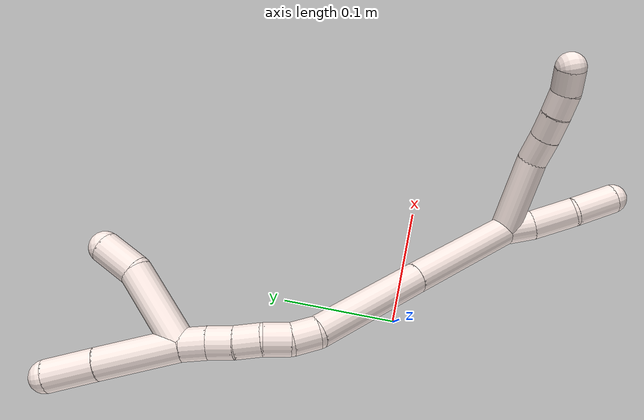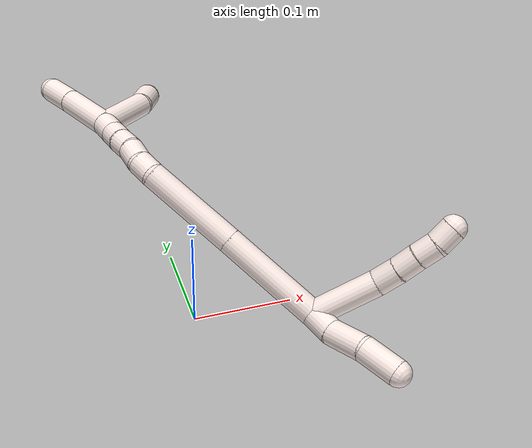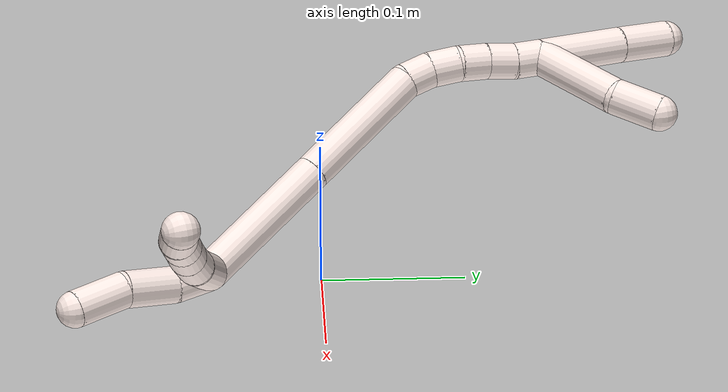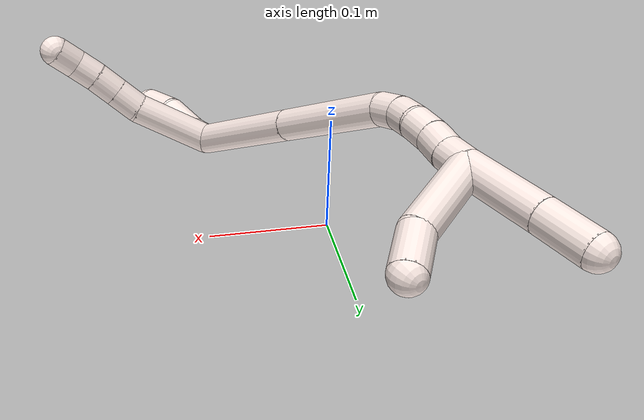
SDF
<sdf version="1.7">
 <world name="default">
  <model name="11">
   <static>0</static>
   <link name="11">
    <collision name="collision-cylinder-e_1_2_8">
     <pose>0.026614 -0.012447 -0.014301 2.42539 0.951822 1.88556</pose>
     <geometry><cylinder><radius>0.0125</radius><length>0.065353</length></cylinder></geometry>
     <surface>
      <friction><ode><mu>1.16</mu><mu2>1.16</mu2><slip1>0</slip1><slip2>0</slip2></ode></friction>
      <contact><ode><kp>1e+06</kp><kd>1</kd><max_vel>0</max_vel><min_depth>0.001</min_depth></ode></contact>
     </surface>
    </collision>
    <visual name="visual-cylinder-e_1_2_8">
     <pose>0.026614 -0.012447 -0.014301 2.42539 0.951822 1.88556</pose>
     <geometry><cylinder><radius>0.0125</radius><length>0.065353</length></cylinder></geometry>
     <material><ambient>1 0.933333 0.909804 1</ambient></material>
    </visual>
    <collision name="collision-cylinder-e_2_8_9">
     <pose>0.061202 -0.031412 -0.033921 2.25528 0.758583 1.39705</pose>
     <geometry><cylinder><radius>0.0125</radius><length>0.023184</length></cylinder></geometry>
     <surface>
      <friction><ode><mu>1.16</mu><mu2>1.16</mu2><slip1>0</slip1><slip2>0</slip2></ode></friction>
      <contact><ode><kp>1e+06</kp><kd>1</kd><max_vel>0</max_vel><min_depth>0.001</min_depth></ode></contact>
     </surface>
    </collision>
    <visual name="visual-cylinder-e_2_8_9">
     <pose>0.061202 -0.031412 -0.033921 2.25528 0.758583 1.39705</pose>
     <geometry><cylinder><radius>0.0125</radius><length>0.023184</length></cylinder></geometry>
     <material><ambient>1 0.933333 0.909804 1</ambient></material>
    </visual>
    <collision name="collision-cylinder-e_3_9_10">
     <pose>0.076729 -0.044136 -0.043453 2.16721 0.788894 1.33194</pose>
     <geometry><cylinder><radius>0.0125</radius><length>0.021288</length></cylinder></geometry>
     <surface>
      <friction><ode><mu>1.16</mu><mu2>1.16</mu2><slip1>0</slip1><slip2>0</slip2></ode></friction>
      <contact><ode><kp>1e+06</kp><kd>1</kd><max_vel>0</max_vel><min_depth>0.001</min_depth></ode></contact>
     </surface>
    </collision>
    <visual name="visual-cylinder-e_3_9_10">
     <pose>0.076729 -0.044136 -0.043453 2.16721 0.788894 1.33194</pose>
     <geometry><cylinder><radius>0.0125</radius><length>0.021288</length></cylinder></geometry>
     <material><ambient>1 0.933333 0.909804 1</ambient></material>
    </visual>
    <collision name="collision-cylinder-e_4_10_11">
     <pose>0.091801 -0.055633 -0.051655 2.21674 0.848387 1.47222</pose>
     <geometry><cylinder><radius>0.0125</radius><length>0.020046</length></cylinder></geometry>
     <surface>
      <friction><ode><mu>1.16</mu><mu2>1.16</mu2><slip1>0</slip1><slip2>0</slip2></ode></friction>
      <contact><ode><kp>1e+06</kp><kd>1</kd><max_vel>0</max_vel><min_depth>0.001</min_depth></ode></contact>
     </surface>
    </collision>
    <visual name="visual-cylinder-e_4_10_11">
     <pose>0.091801 -0.055633 -0.051655 2.21674 0.848387 1.47222</pose>
     <geometry><cylinder><radius>0.0125</radius><length>0.020046</length></cylinder></geometry>
     <material><ambient>1 0.933333 0.909804 1</ambient></material>
    </visual>
    <collision name="collision-cylinder-e_5_11_6">
     <pose>0.107353 -0.066735 -0.057384 1.86172 0.924056 1.17913</pose>
     <geometry><cylinder><radius>0.0125</radius><length>0.020129</length></cylinder></geometry>
     <surface>
      <friction><ode><mu>1.16</mu><mu2>1.16</mu2><slip1>0</slip1><slip2>0</slip2></ode></friction>
      <contact><ode><kp>1e+06</kp><kd>1</kd><max_vel>0</max_vel><min_depth>0.001</min_depth></ode></contact>
     </surface>
    </collision>
    <visual name="visual-cylinder-e_5_11_6">
     <pose>0.107353 -0.066735 -0.057384 1.86172 0.924056 1.17913</pose>
     <geometry><cylinder><radius>0.0125</radius><length>0.020129</length></cylinder></geometry>
     <material><ambient>1 0.933333 0.909804 1</ambient></material>
    </visual>
    <collision name="collision-cylinder-e_1_2_12">
     <pose>-0.000145 0.001946 -0.012674 -2.98925 -0.011287 0.147626</pose>
     <geometry><cylinder><radius>0.0125</radius><length>0.025646</length></cylinder></geometry>
     <surface>
      <friction><ode><mu>1.16</mu><mu2>1.16</mu2><slip1>0</slip1><slip2>0</slip2></ode></friction>
      <contact><ode><kp>1e+06</kp><kd>1</kd><max_vel>0</max_vel><min_depth>0.001</min_depth></ode></contact>
     </surface>
    </collision>
    <visual name="visual-cylinder-e_1_2_12">
     <pose>-0.000145 0.001946 -0.012674 -2.98925 -0.011287 0.147626</pose>
     <geometry><cylinder><radius>0.0125</radius><length>0.025646</length></cylinder></geometry>
     <material><ambient>1 0.933333 0.909804 1</ambient></material>
    </visual>
    <collision name="collision-cylinder-e_2_12_13">
     <pose>0.002059 0.001388 -0.043753 3.0064 0.12578 1.4985</pose>
     <geometry><cylinder><radius>0.0125</radius><length>0.037446</length></cylinder></geometry>
     <surface>
      <friction><ode><mu>1.16</mu><mu2>1.16</mu2><slip1>0</slip1><slip2>0</slip2></ode></friction>
      <contact><ode><kp>1e+06</kp><kd>1</kd><max_vel>0</max_vel><min_depth>0.001</min_depth></ode></contact>
     </surface>
    </collision>
    <visual name="visual-cylinder-e_2_12_13">
     <pose>0.002059 0.001388 -0.043753 3.0064 0.12578 1.4985</pose>
     <geometry><cylinder><radius>0.0125</radius><length>0.037446</length></cylinder></geometry>
     <material><ambient>1 0.933333 0.909804 1</ambient></material>
    </visual>
    <collision name="collision-cylinder-e_3_13_5">
     <pose>0.006965 0.001346 -0.080268 -3.0065 0.138977 -1.5992</pose>
     <geometry><cylinder><radius>0.0125</radius><length>0.036908</length></cylinder></geometry>
     <surface>
      <friction><ode><mu>1.16</mu><mu2>1.16</mu2><slip1>0</slip1><slip2>0</slip2></ode></friction>
      <contact><ode><kp>1e+06</kp><kd>1</kd><max_vel>0</max_vel><min_depth>0.001</min_depth></ode></contact>
     </surface>
    </collision>
    <visual name="visual-cylinder-e_3_13_5">
     <pose>0.006965 0.001346 -0.080268 -3.0065 0.138977 -1.5992</pose>
     <geometry><cylinder><radius>0.0125</radius><length>0.036908</length></cylinder></geometry>
     <material><ambient>1 0.933333 0.909804 1</ambient></material>
    </visual>
    <collision name="collision-cylinder-e_1_2_14">
     <pose>-0.011918 -0.023977 0.04389 0.49999 -0.233941 -0.05999</pose>
     <geometry><cylinder><radius>0.0125</radius><length>0.102825</length></cylinder></geometry>
     <surface>
      <friction><ode><mu>1.16</mu><mu2>1.16</mu2><slip1>0</slip1><slip2>0</slip2></ode></friction>
      <contact><ode><kp>1e+06</kp><kd>1</kd><max_vel>0</max_vel><min_depth>0.001</min_depth></ode></contact>
     </surface>
    </collision>
    <visual name="visual-cylinder-e_1_2_14">
     <pose>-0.011918 -0.023977 0.04389 0.49999 -0.233941 -0.05999</pose>
     <geometry><cylinder><radius>0.0125</radius><length>0.102825</length></cylinder></geometry>
     <material><ambient>1 0.933333 0.909804 1</ambient></material>
    </visual>
    <collision name="collision-cylinder-e_2_14_15">
     <pose>-0.035435 -0.070265 0.128784 0.498327 -0.243541 -0.062257</pose>
     <geometry><cylinder><radius>0.0125</radius><length>0.0962</length></cylinder></geometry>
     <surface>
      <friction><ode><mu>1.16</mu><mu2>1.16</mu2><slip1>0</slip1><slip2>0</slip2></ode></friction>
      <contact><ode><kp>1e+06</kp><kd>1</kd><max_vel>0</max_vel><min_depth>0.001</min_depth></ode></contact>
     </surface>
    </collision>
    <visual name="visual-cylinder-e_2_14_15">
     <pose>-0.035435 -0.070265 0.128784 0.498327 -0.243541 -0.062257</pose>
     <geometry><cylinder><radius>0.0125</radius><length>0.0962</length></cylinder></geometry>
     <material><ambient>1 0.933333 0.909804 1</ambient></material>
    </visual>
    <collision name="collision-cylinder-e_3_15_16">
     <pose>-0.047574 -0.094893 0.179525 0.233612 -0.053913 -0.006328</pose>
     <geometry><cylinder><radius>0.0125</radius><length>0.020048</length></cylinder></geometry>
     <surface>
      <friction><ode><mu>1.16</mu><mu2>1.16</mu2><slip1>0</slip1><slip2>0</slip2></ode></friction>
      <contact><ode><kp>1e+06</kp><kd>1</kd><max_vel>0</max_vel><min_depth>0.001</min_depth></ode></contact>
     </surface>
    </collision>
    <visual name="visual-cylinder-e_3_15_16">
     <pose>-0.047574 -0.094893 0.179525 0.233612 -0.053913 -0.006328</pose>
     <geometry><cylinder><radius>0.0125</radius><length>0.020048</length></cylinder></geometry>
     <material><ambient>1 0.933333 0.909804 1</ambient></material>
    </visual>
    <collision name="collision-cylinder-e_4_16_17">
     <pose>-0.046095 -0.098263 0.199429 0.103167 0.195009 0.0101</pose>
     <geometry><cylinder><radius>0.0125</radius><length>0.020837</length></cylinder></geometry>
     <surface>
      <friction><ode><mu>1.16</mu><mu2>1.16</mu2><slip1>0</slip1><slip2>0</slip2></ode></friction>
      <contact><ode><kp>1e+06</kp><kd>1</kd><max_vel>0</max_vel><min_depth>0.001</min_depth></ode></contact>
     </surface>
    </collision>
    <visual name="visual-cylinder-e_4_16_17">
     <pose>-0.046095 -0.098263 0.199429 0.103167 0.195009 0.0101</pose>
     <geometry><cylinder><radius>0.0125</radius><length>0.020837</length></cylinder></geometry>
     <material><ambient>1 0.933333 0.909804 1</ambient></material>
    </visual>
    <collision name="collision-cylinder-e_5_17_18">
     <pose>-0.043379 -0.098679 0.21957 -0.063712 0.069676 -0.002221</pose>
     <geometry><cylinder><radius>0.0125</radius><length>0.020038</length></cylinder></geometry>
     <surface>
      <friction><ode><mu>1.16</mu><mu2>1.16</mu2><slip1>0</slip1><slip2>0</slip2></ode></friction>
      <contact><ode><kp>1e+06</kp><kd>1</kd><max_vel>0</max_vel><min_depth>0.001</min_depth></ode></contact>
     </surface>
    </collision>
    <visual name="visual-cylinder-e_5_17_18">
     <pose>-0.043379 -0.098679 0.21957 -0.063712 0.069676 -0.002221</pose>
     <geometry><cylinder><radius>0.0125</radius><length>0.020038</length></cylinder></geometry>
     <material><ambient>1 0.933333 0.909804 1</ambient></material>
    </visual>
    <collision name="collision-cylinder-e_6_18_19">
     <pose>-0.041097 -0.096793 0.239351 -0.126745 0.158897 -0.010104</pose>
     <geometry><cylinder><radius>0.0125</radius><length>0.020025</length></cylinder></geometry>
     <surface>
      <friction><ode><mu>1.16</mu><mu2>1.16</mu2><slip1>0</slip1><slip2>0</slip2></ode></friction>
      <contact><ode><kp>1e+06</kp><kd>1</kd><max_vel>0</max_vel><min_depth>0.001</min_depth></ode></contact>
     </surface>
    </collision>
    <visual name="visual-cylinder-e_6_18_19">
     <pose>-0.041097 -0.096793 0.239351 -0.126745 0.158897 -0.010104</pose>
     <geometry><cylinder><radius>0.0125</radius><length>0.020025</length></cylinder></geometry>
     <material><ambient>1 0.933333 0.909804 1</ambient></material>
    </visual>
    <collision name="collision-cylinder-e_7_19_1">
     <pose>-0.038378 -0.09563 0.259107 0.008702 0.113588 0.000495</pose>
     <geometry><cylinder><radius>0.0125</radius><length>0.020027</length></cylinder></geometry>
     <surface>
      <friction><ode><mu>1.16</mu><mu2>1.16</mu2><slip1>0</slip1><slip2>0</slip2></ode></friction>
      <contact><ode><kp>1e+06</kp><kd>1</kd><max_vel>0</max_vel><min_depth>0.001</min_depth></ode></contact>
     </surface>
    </collision>
    <visual name="visual-cylinder-e_7_19_1">
     <pose>-0.038378 -0.09563 0.259107 0.008702 0.113588 0.000495</pose>
     <geometry><cylinder><radius>0.0125</radius><length>0.020027</length></cylinder></geometry>
     <material><ambient>1 0.933333 0.909804 1</ambient></material>
    </visual>
    <collision name="collision-cylinder-e_1_1_20">
     <pose>-0.007897 -0.08642 0.282377 -0.609285 1.06524 -0.366517</pose>
     <geometry><cylinder><radius>0.0125</radius><length>0.067084</length></cylinder></geometry>
     <surface>
      <friction><ode><mu>1.16</mu><mu2>1.16</mu2><slip1>0</slip1><slip2>0</slip2></ode></friction>
      <contact><ode><kp>1e+06</kp><kd>1</kd><max_vel>0</max_vel><min_depth>0.001</min_depth></ode></contact>
     </surface>
    </collision>
    <visual name="visual-cylinder-e_1_1_20">
     <pose>-0.007897 -0.08642 0.282377 -0.609285 1.06524 -0.366517</pose>
     <geometry><cylinder><radius>0.0125</radius><length>0.067084</length></cylinder></geometry>
     <material><ambient>1 0.933333 0.909804 1</ambient></material>
    </visual>
    <collision name="collision-cylinder-e_2_20_4">
     <pose>0.032654 -0.072086 0.306649 -0.431171 0.748871 -0.171691</pose>
     <geometry><cylinder><radius>0.0125</radius><length>0.032916</length></cylinder></geometry>
     <surface>
      <friction><ode><mu>1.16</mu><mu2>1.16</mu2><slip1>0</slip1><slip2>0</slip2></ode></friction>
      <contact><ode><kp>1e+06</kp><kd>1</kd><max_vel>0</max_vel><min_depth>0.001</min_depth></ode></contact>
     </surface>
    </collision>
    <visual name="visual-cylinder-e_2_20_4">
     <pose>0.032654 -0.072086 0.306649 -0.431171 0.748871 -0.171691</pose>
     <geometry><cylinder><radius>0.0125</radius><length>0.032916</length></cylinder></geometry>
     <material><ambient>1 0.933333 0.909804 1</ambient></material>
    </visual>
    <collision name="collision-cylinder-e_1_1_21">
     <pose>-0.038574 -0.094756 0.300122 -0.030894 -0.042802 0.000661</pose>
     <geometry><cylinder><radius>0.0125</radius><length>0.062219</length></cylinder></geometry>
     <surface>
      <friction><ode><mu>1.16</mu><mu2>1.16</mu2><slip1>0</slip1><slip2>0</slip2></ode></friction>
      <contact><ode><kp>1e+06</kp><kd>1</kd><max_vel>0</max_vel><min_depth>0.001</min_depth></ode></contact>
     </surface>
    </collision>
    <visual name="visual-cylinder-e_1_1_21">
     <pose>-0.038574 -0.094756 0.300122 -0.030894 -0.042802 0.000661</pose>
     <geometry><cylinder><radius>0.0125</radius><length>0.062219</length></cylinder></geometry>
     <material><ambient>1 0.933333 0.909804 1</ambient></material>
    </visual>
    <collision name="collision-cylinder-e_2_21_3">
     <pose>-0.040892 -0.092821 0.350027 -0.051714 -0.052261 0.001352</pose>
     <geometry><cylinder><radius>0.0125</radius><length>0.037781</length></cylinder></geometry>
     <surface>
      <friction><ode><mu>1.16</mu><mu2>1.16</mu2><slip1>0</slip1><slip2>0</slip2></ode></friction>
      <contact><ode><kp>1e+06</kp><kd>1</kd><max_vel>0</max_vel><min_depth>0.001</min_depth></ode></contact>
     </surface>
    </collision>
    <visual name="visual-cylinder-e_2_21_3">
     <pose>-0.040892 -0.092821 0.350027 -0.051714 -0.052261 0.001352</pose>
     <geometry><cylinder><radius>0.0125</radius><length>0.037781</length></cylinder></geometry>
     <material><ambient>1 0.933333 0.909804 1</ambient></material>
    </visual>
    <collision name="collision-sphere-3">
     <pose>-0.041879 -0.091846 0.368867 0 -0 0</pose>
     <geometry><sphere><radius>0.0125</radius></sphere></geometry>
     <surface>
      <friction><ode><mu>1.16</mu><mu2>1.16</mu2><slip1>0</slip1><slip2>0</slip2></ode></friction>
      <contact><ode><kp>1e+06</kp><kd>1</kd><max_vel>0</max_vel><min_depth>0.001</min_depth></ode></contact>
     </surface>
    </collision>
    <visual name="visual-sphere-3">
     <pose>-0.041879 -0.091846 0.368867 0 -0 0</pose>
     <geometry><sphere><radius>0.0125</radius></sphere></geometry>
     <material><ambient>1 0.933333 0.909804 1</ambient></material>
    </visual>
    <collision name="collision-sphere-21">
     <pose>-0.039905 -0.093796 0.331188 0 -0 0</pose>
     <geometry><sphere><radius>0.0125</radius></sphere></geometry>
     <surface>
      <friction><ode><mu>1.16</mu><mu2>1.16</mu2><slip1>0</slip1><slip2>0</slip2></ode></friction>
      <contact><ode><kp>1e+06</kp><kd>1</kd><max_vel>0</max_vel><min_depth>0.001</min_depth></ode></contact>
     </surface>
    </collision>
    <visual name="visual-sphere-21">
     <pose>-0.039905 -0.093796 0.331188 0 -0 0</pose>
     <geometry><sphere><radius>0.0125</radius></sphere></geometry>
     <material><ambient>1 0.933333 0.909804 1</ambient></material>
    </visual>
    <collision name="collision-sphere-4">
     <pose>0.043859 -0.067048 0.317601 0 -0 0</pose>
     <geometry><sphere><radius>0.0125</radius></sphere></geometry>
     <surface>
      <friction><ode><mu>1.16</mu><mu2>1.16</mu2><slip1>0</slip1><slip2>0</slip2></ode></friction>
      <contact><ode><kp>1e+06</kp><kd>1</kd><max_vel>0</max_vel><min_depth>0.001</min_depth></ode></contact>
     </surface>
    </collision>
    <visual name="visual-sphere-4">
     <pose>0.043859 -0.067048 0.317601 0 -0 0</pose>
     <geometry><sphere><radius>0.0125</radius></sphere></geometry>
     <material><ambient>1 0.933333 0.909804 1</ambient></material>
    </visual>
    <collision name="collision-sphere-20">
     <pose>0.021449 -0.077124 0.295698 0 -0 0</pose>
     <geometry><sphere><radius>0.0125</radius></sphere></geometry>
     <surface>
      <friction><ode><mu>1.16</mu><mu2>1.16</mu2><slip1>0</slip1><slip2>0</slip2></ode></friction>
      <contact><ode><kp>1e+06</kp><kd>1</kd><max_vel>0</max_vel><min_depth>0.001</min_depth></ode></contact>
     </surface>
    </collision>
    <visual name="visual-sphere-20">
     <pose>0.021449 -0.077124 0.295698 0 -0 0</pose>
     <geometry><sphere><radius>0.0125</radius></sphere></geometry>
     <material><ambient>1 0.933333 0.909804 1</ambient></material>
    </visual>
    <collision name="collision-sphere-6">
     <pose>0.115385 -0.072545 -0.059124 0 -0 0</pose>
     <geometry><sphere><radius>0.0125</radius></sphere></geometry>
     <surface>
      <friction><ode><mu>1.16</mu><mu2>1.16</mu2><slip1>0</slip1><slip2>0</slip2></ode></friction>
      <contact><ode><kp>1e+06</kp><kd>1</kd><max_vel>0</max_vel><min_depth>0.001</min_depth></ode></contact>
     </surface>
    </collision>
    <visual name="visual-sphere-6">
     <pose>0.115385 -0.072545 -0.059124 0 -0 0</pose>
     <geometry><sphere><radius>0.0125</radius></sphere></geometry>
     <material><ambient>1 0.933333 0.909804 1</ambient></material>
    </visual>
    <collision name="collision-sphere-11">
     <pose>0.09932 -0.060925 -0.055644 0 -0 0</pose>
     <geometry><sphere><radius>0.0125</radius></sphere></geometry>
     <surface>
      <friction><ode><mu>1.16</mu><mu2>1.16</mu2><slip1>0</slip1><slip2>0</slip2></ode></friction>
      <contact><ode><kp>1e+06</kp><kd>1</kd><max_vel>0</max_vel><min_depth>0.001</min_depth></ode></contact>
     </surface>
    </collision>
    <visual name="visual-sphere-11">
     <pose>0.09932 -0.060925 -0.055644 0 -0 0</pose>
     <geometry><sphere><radius>0.0125</radius></sphere></geometry>
     <material><ambient>1 0.933333 0.909804 1</ambient></material>
    </visual>
    <collision name="collision-sphere-10">
     <pose>0.084282 -0.050341 -0.047666 0 -0 0</pose>
     <geometry><sphere><radius>0.0125</radius></sphere></geometry>
     <surface>
      <friction><ode><mu>1.16</mu><mu2>1.16</mu2><slip1>0</slip1><slip2>0</slip2></ode></friction>
      <contact><ode><kp>1e+06</kp><kd>1</kd><max_vel>0</max_vel><min_depth>0.001</min_depth></ode></contact>
     </surface>
    </collision>
    <visual name="visual-sphere-10">
     <pose>0.084282 -0.050341 -0.047666 0 -0 0</pose>
     <geometry><sphere><radius>0.0125</radius></sphere></geometry>
     <material><ambient>1 0.933333 0.909804 1</ambient></material>
    </visual>
    <collision name="collision-sphere-9">
     <pose>0.069176 -0.037931 -0.039241 0 -0 0</pose>
     <geometry><sphere><radius>0.0125</radius></sphere></geometry>
     <surface>
      <friction><ode><mu>1.16</mu><mu2>1.16</mu2><slip1>0</slip1><slip2>0</slip2></ode></friction>
      <contact><ode><kp>1e+06</kp><kd>1</kd><max_vel>0</max_vel><min_depth>0.001</min_depth></ode></contact>
     </surface>
    </collision>
    <visual name="visual-sphere-9">
     <pose>0.069176 -0.037931 -0.039241 0 -0 0</pose>
     <geometry><sphere><radius>0.0125</radius></sphere></geometry>
     <material><ambient>1 0.933333 0.909804 1</ambient></material>
    </visual>
    <collision name="collision-sphere-2">
     <geometry><sphere><radius>0.0125</radius></sphere></geometry>
     <surface>
      <friction><ode><mu>1.16</mu><mu2>1.16</mu2><slip1>0</slip1><slip2>0</slip2></ode></friction>
      <contact><ode><kp>1e+06</kp><kd>1</kd><max_vel>0</max_vel><min_depth>0.001</min_depth></ode></contact>
     </surface>
    </collision>
    <visual name="visual-sphere-2">
     <geometry><sphere><radius>0.0125</radius></sphere></geometry>
     <material><ambient>1 0.933333 0.909804 1</ambient></material>
    </visual>
    <collision name="collision-sphere-19">
     <pose>-0.039513 -0.095543 0.249158 0 -0 0</pose>
     <geometry><sphere><radius>0.0125</radius></sphere></geometry>
     <surface>
      <friction><ode><mu>1.16</mu><mu2>1.16</mu2><slip1>0</slip1><slip2>0</slip2></ode></friction>
      <contact><ode><kp>1e+06</kp><kd>1</kd><max_vel>0</max_vel><min_depth>0.001</min_depth></ode></contact>
     </surface>
    </collision>
    <visual name="visual-sphere-19">
     <pose>-0.039513 -0.095543 0.249158 0 -0 0</pose>
     <geometry><sphere><radius>0.0125</radius></sphere></geometry>
     <material><ambient>1 0.933333 0.909804 1</ambient></material>
    </visual>
    <collision name="collision-sphere-8">
     <pose>0.053229 -0.024894 -0.028602 0 -0 0</pose>
     <geometry><sphere><radius>0.0125</radius></sphere></geometry>
     <surface>
      <friction><ode><mu>1.16</mu><mu2>1.16</mu2><slip1>0</slip1><slip2>0</slip2></ode></friction>
      <contact><ode><kp>1e+06</kp><kd>1</kd><max_vel>0</max_vel><min_depth>0.001</min_depth></ode></contact>
     </surface>
    </collision>
    <visual name="visual-sphere-8">
     <pose>0.053229 -0.024894 -0.028602 0 -0 0</pose>
     <geometry><sphere><radius>0.0125</radius></sphere></geometry>
     <material><ambient>1 0.933333 0.909804 1</ambient></material>
    </visual>
    <collision name="collision-sphere-12">
     <pose>-0.000289 0.003892 -0.025347 0 -0 0</pose>
     <geometry><sphere><radius>0.0125</radius></sphere></geometry>
     <surface>
      <friction><ode><mu>1.16</mu><mu2>1.16</mu2><slip1>0</slip1><slip2>0</slip2></ode></friction>
      <contact><ode><kp>1e+06</kp><kd>1</kd><max_vel>0</max_vel><min_depth>0.001</min_depth></ode></contact>
     </surface>
    </collision>
    <visual name="visual-sphere-12">
     <pose>-0.000289 0.003892 -0.025347 0 -0 0</pose>
     <geometry><sphere><radius>0.0125</radius></sphere></geometry>
     <material><ambient>1 0.933333 0.909804 1</ambient></material>
    </visual>
    <collision name="collision-sphere-13">
     <pose>0.004408 -0.001116 -0.062159 0 -0 0</pose>
     <geometry><sphere><radius>0.0125</radius></sphere></geometry>
     <surface>
      <friction><ode><mu>1.16</mu><mu2>1.16</mu2><slip1>0</slip1><slip2>0</slip2></ode></friction>
      <contact><ode><kp>1e+06</kp><kd>1</kd><max_vel>0</max_vel><min_depth>0.001</min_depth></ode></contact>
     </surface>
    </collision>
    <visual name="visual-sphere-13">
     <pose>0.004408 -0.001116 -0.062159 0 -0 0</pose>
     <geometry><sphere><radius>0.0125</radius></sphere></geometry>
     <material><ambient>1 0.933333 0.909804 1</ambient></material>
    </visual>
    <collision name="collision-sphere-5">
     <pose>0.009521 0.003807 -0.098378 0 -0 0</pose>
     <geometry><sphere><radius>0.0125</radius></sphere></geometry>
     <surface>
      <friction><ode><mu>1.16</mu><mu2>1.16</mu2><slip1>0</slip1><slip2>0</slip2></ode></friction>
      <contact><ode><kp>1e+06</kp><kd>1</kd><max_vel>0</max_vel><min_depth>0.001</min_depth></ode></contact>
     </surface>
    </collision>
    <visual name="visual-sphere-5">
     <pose>0.009521 0.003807 -0.098378 0 -0 0</pose>
     <geometry><sphere><radius>0.0125</radius></sphere></geometry>
     <material><ambient>1 0.933333 0.909804 1</ambient></material>
    </visual>
    <collision name="collision-sphere-14">
     <pose>-0.023836 -0.047953 0.08778 0 -0 0</pose>
     <geometry><sphere><radius>0.0125</radius></sphere></geometry>
     <surface>
      <friction><ode><mu>1.16</mu><mu2>1.16</mu2><slip1>0</slip1><slip2>0</slip2></ode></friction>
      <contact><ode><kp>1e+06</kp><kd>1</kd><max_vel>0</max_vel><min_depth>0.001</min_depth></ode></contact>
     </surface>
    </collision>
    <visual name="visual-sphere-14">
     <pose>-0.023836 -0.047953 0.08778 0 -0 0</pose>
     <geometry><sphere><radius>0.0125</radius></sphere></geometry>
     <material><ambient>1 0.933333 0.909804 1</ambient></material>
    </visual>
    <collision name="collision-sphere-15">
     <pose>-0.047034 -0.092576 0.169787 0 -0 0</pose>
     <geometry><sphere><radius>0.0125</radius></sphere></geometry>
     <surface>
      <friction><ode><mu>1.16</mu><mu2>1.16</mu2><slip1>0</slip1><slip2>0</slip2></ode></friction>
      <contact><ode><kp>1e+06</kp><kd>1</kd><max_vel>0</max_vel><min_depth>0.001</min_depth></ode></contact>
     </surface>
    </collision>
    <visual name="visual-sphere-15">
     <pose>-0.047034 -0.092576 0.169787 0 -0 0</pose>
     <geometry><sphere><radius>0.0125</radius></sphere></geometry>
     <material><ambient>1 0.933333 0.909804 1</ambient></material>
    </visual>
    <collision name="collision-sphere-16">
     <pose>-0.048114 -0.09721 0.189262 0 -0 0</pose>
     <geometry><sphere><radius>0.0125</radius></sphere></geometry>
     <surface>
      <friction><ode><mu>1.16</mu><mu2>1.16</mu2><slip1>0</slip1><slip2>0</slip2></ode></friction>
      <contact><ode><kp>1e+06</kp><kd>1</kd><max_vel>0</max_vel><min_depth>0.001</min_depth></ode></contact>
     </surface>
    </collision>
    <visual name="visual-sphere-16">
     <pose>-0.048114 -0.09721 0.189262 0 -0 0</pose>
     <geometry><sphere><radius>0.0125</radius></sphere></geometry>
     <material><ambient>1 0.933333 0.909804 1</ambient></material>
    </visual>
    <collision name="collision-sphere-17">
     <pose>-0.044077 -0.099315 0.209595 0 -0 0</pose>
     <geometry><sphere><radius>0.0125</radius></sphere></geometry>
     <surface>
      <friction><ode><mu>1.16</mu><mu2>1.16</mu2><slip1>0</slip1><slip2>0</slip2></ode></friction>
      <contact><ode><kp>1e+06</kp><kd>1</kd><max_vel>0</max_vel><min_depth>0.001</min_depth></ode></contact>
     </surface>
    </collision>
    <visual name="visual-sphere-17">
     <pose>-0.044077 -0.099315 0.209595 0 -0 0</pose>
     <geometry><sphere><radius>0.0125</radius></sphere></geometry>
     <material><ambient>1 0.933333 0.909804 1</ambient></material>
    </visual>
    <collision name="collision-sphere-18">
     <pose>-0.042682 -0.098043 0.229544 0 -0 0</pose>
     <geometry><sphere><radius>0.0125</radius></sphere></geometry>
     <surface>
      <friction><ode><mu>1.16</mu><mu2>1.16</mu2><slip1>0</slip1><slip2>0</slip2></ode></friction>
      <contact><ode><kp>1e+06</kp><kd>1</kd><max_vel>0</max_vel><min_depth>0.001</min_depth></ode></contact>
     </surface>
    </collision>
    <visual name="visual-sphere-18">
     <pose>-0.042682 -0.098043 0.229544 0 -0 0</pose>
     <geometry><sphere><radius>0.0125</radius></sphere></geometry>
     <material><ambient>1 0.933333 0.909804 1</ambient></material>
    </visual>
    <collision name="collision-sphere-1">
     <pose>-0.037243 -0.095716 0.269055 0 -0 0</pose>
     <geometry><sphere><radius>0.0125</radius></sphere></geometry>
     <surface>
      <friction><ode><mu>1.16</mu><mu2>1.16</mu2><slip1>0</slip1><slip2>0</slip2></ode></friction>
      <contact><ode><kp>1e+06</kp><kd>1</kd><max_vel>0</max_vel><min_depth>0.001</min_depth></ode></contact>
     </surface>
    </collision>
    <visual name="visual-sphere-1">
     <pose>-0.037243 -0.095716 0.269055 0 -0 0</pose>
     <geometry><sphere><radius>0.0125</radius></sphere></geometry>
     <material><ambient>1 0.933333 0.909804 1</ambient></material>
    </visual>
    <inertial>
     <pose>-0.004381 -0.055155 0.12028 0 -0 0</pose>
     <mass>0.75</mass>
     <inertia>
      <ixx>0.000234</ixx>
      <ixy>0</ixy>
      <ixz>0</ixz>
      <iyy>0.000232</iyy>
      <iyz>0</iyz>
      <izz>9.1e-05</izz>
     </inertia>
    </inertial>
   </link>
   <pose>0.093212 -0.076961 0.05078 -1.56156 -0.114721 0.374836</pose>
  </model>
 </world>
</sdf>
